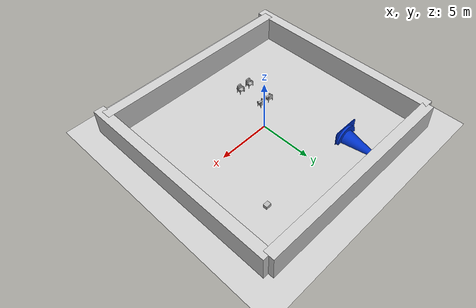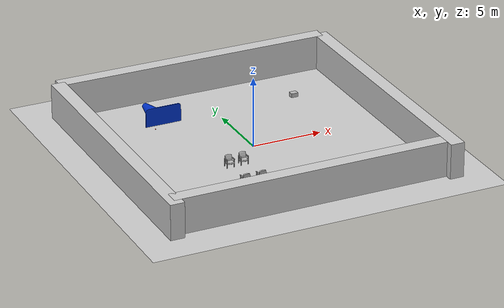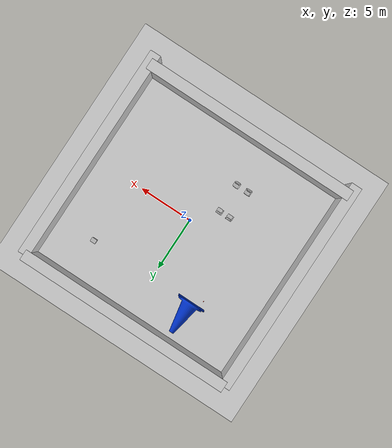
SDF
<sdf version="1.7">
 <world name="test_room">
  <light name="sun" type="directional">
   <pose>0 0 10 0 -0 0</pose>
   <diffuse>0.8 0.8 0.8 1</diffuse>
   <specular>0.2 0.2 0.2 1</specular>
   <attenuation>
    <range>1000</range>
    <constant>0.9</constant>
    <linear>0.01</linear>
    <quadratic>0.001</quadratic>
   </attenuation>
   <direction>-0.5 0.1 -0.9</direction>
   <spot><inner_angle>0</inner_angle><outer_angle>0</outer_angle><falloff>0</falloff></spot>
  </light>
  <model name="ground_plane">
   <static>1</static>
   <link name="link">
    <collision name="collision">
     <geometry><plane><normal>0 0 1</normal><size>100 100</size></plane></geometry>
     <surface>
      <contact><collide_bitmask>65535</collide_bitmask></contact>
      <friction><ode><mu>100</mu><mu2>50</mu2></ode></friction>
     </surface>
    </collision>
    <visual name="visual">
     <cast_shadows>0</cast_shadows>
     <geometry><plane><normal>0 0 1</normal><size>100 100</size></plane></geometry>
     <material>
      <script><uri>file://media/materials/scripts/gazebo.material</uri><name>Gazebo/Grey</name></script>
     </material>
    </visual>
   </link>
  </model>
  <model name="room">
   <static>1</static>
   <link name="wall_back">
    <visual name="back_visual">
     <geometry><box><size>20 1.0 2.5</size></box></geometry>
     <pose>0 -9.0 1.25 0 -0 0</pose>
     <material><ambient>0.8 0.8 0.8 1</ambient></material>
    </visual>
    <collision name="back_collision">
     <pose>0 -9.0 1.25 0 -0 0</pose>
     <geometry><box><size>20 1.0 2.5</size></box></geometry>
    </collision>
   </link>
   <link name="wall_front">
    <visual name="front_visual">
     <geometry><box><size>20 1.0 2.5</size></box></geometry>
     <pose>0 10 1.25 0 -0 0</pose>
     <material><ambient>0.8 0.8 0.8 1</ambient></material>
    </visual>
    <collision name="front_collision">
     <pose>0 10 1.25 0 -0 0</pose>
     <geometry><box><size>20 1.0 2.5</size></box></geometry>
    </collision>
   </link>
   <link name="wall_left">
    <visual name="left_visual">
     <geometry><box><size>1.0 20 2.5</size></box></geometry>
     <pose>-10 0 1.25 0 -0 0</pose>
     <material><ambient>0.8 0.8 0.8 1</ambient></material>
    </visual>
    <collision name="left_collision">
     <pose>-10 0 1.25 0 -0 0</pose>
     <geometry><box><size>1.0 20 2.5</size></box></geometry>
    </collision>
   </link>
   <link name="wall_right">
    <visual name="right_visual">
     <geometry><box><size>1.0 20 2.5</size></box></geometry>
     <pose>10 0 1.25 0 -0 0</pose>
     <material><ambient>0.8 0.8 0.8 1</ambient></material>
    </visual>
    <collision name="right_collision">
     <pose>10 0 1.25 0 -0 0</pose>
     <geometry><box><size>1.0 20 2.5</size></box></geometry>
    </collision>
   </link>
  </model>
  <gravity>0 0 -9.8</gravity>
  <magnetic_field>6e-06 2.3e-05 -4.2e-05</magnetic_field>
  <atmosphere type="adiabatic"/>
  <physics type="ode">
   <max_step_size>0.001</max_step_size>
   <real_time_factor>1</real_time_factor>
   <real_time_update_rate>1000</real_time_update_rate>
  </physics>
  <scene><ambient>0.4 0.4 0.4 1</ambient><background>0.7 0.7 0.7 1</background><shadows>1</shadows></scene>
  <audio><device>default</device></audio>
  <spherical_coordinates>
   <surface_model>EARTH_WGS84</surface_model>
   <latitude_deg>0</latitude_deg>
   <longitude_deg>0</longitude_deg>
   <elevation>0</elevation>
   <heading_deg>0</heading_deg>
  </spherical_coordinates>
  <model name="cardboard_box">
   <pose>5.97718 6.035 0.149 0 -0 0</pose>
   <link name="link">
    <inertial>
     <mass>2</mass>
     <inertia>
      <ixx>0.0416667</ixx>
      <ixy>0</ixy>
      <ixz>0</ixz>
      <iyy>0.0566667</iyy>
      <iyz>0</iyz>
      <izz>0.0683333</izz>
     </inertia>
    </inertial>
    <collision name="collision">
     <geometry><box><size>0.5 0.4 0.3</size></box></geometry>
     <surface>
      <friction><ode><mu>1</mu><mu2>1</mu2></ode></friction>
      <contact><ode><kp>1e+07</kp><kd>1</kd><min_depth>0.001</min_depth><max_vel>0.1</max_vel></ode></contact>
     </surface>
    </collision>
    <visual name="visual">
     <pose>0 0 -0.15 0 -0 0</pose>
     <geometry>
      <mesh><uri>model://cardboard_box/meshes/cardboard_box.dae</uri><scale>1.25932 1.00745 0.755591</scale></mesh>
     </geometry>
    </visual>
   </link>
  </model>
  <model name="Chair">
   <link name="body">
    <pose>0 0 0 0 -0 1.5708</pose>
    <visual name="visual">
     <geometry>
      <mesh><uri>model://Chair/meshes/Chair.obj</uri><scale>0.00817 0.00817 0.00817</scale></mesh>
     </geometry>
    </visual>
    <collision name="collision">
     <geometry>
      <mesh><uri>model://Chair/meshes/Chair.obj</uri><scale>0.00817 0.00817 0.00817</scale></mesh>
     </geometry>
    </collision>
    <inertial>
     <inertia><ixx>1</ixx><ixy>0</ixy><ixz>0</ixz><iyy>1</iyy><iyz>0</iyz><izz>1</izz></inertia>
     <mass>1</mass>
    </inertial>
   </link>
   <pose>-1.70868 -2.1 -3e-06 1e-05 1.7e-05 -1.5854</pose>
  </model>
  <model name="Chair_0">
   <link name="body">
    <pose>0 0 0 0 -0 1.5708</pose>
    <visual name="visual">
     <geometry>
      <mesh><uri>model://Chair/meshes/Chair.obj</uri><scale>0.00817 0.00817 0.00817</scale></mesh>
     </geometry>
    </visual>
    <collision name="collision">
     <geometry>
      <mesh><uri>model://Chair/meshes/Chair.obj</uri><scale>0.00817 0.00817 0.00817</scale></mesh>
     </geometry>
    </collision>
    <inertial>
     <inertia><ixx>1</ixx><ixy>0</ixy><ixz>0</ixz><iyy>1</iyy><iyz>0</iyz><izz>1</izz></inertia>
     <mass>1</mass>
    </inertial>
   </link>
   <pose>-2.72205 -2.1 -2e-06 -1.9e-05 -3e-06 -1.5854</pose>
  </model>
  <model name="Chair_1">
   <link name="body">
    <pose>0 0 0 0 -0 1.5708</pose>
    <visual name="visual">
     <geometry>
      <mesh><uri>model://Chair/meshes/Chair.obj</uri><scale>0.00817 0.00817 0.00817</scale></mesh>
     </geometry>
    </visual>
    <collision name="collision">
     <geometry>
      <mesh><uri>model://Chair/meshes/Chair.obj</uri><scale>0.00817 0.00817 0.00817</scale></mesh>
     </geometry>
    </collision>
    <inertial>
     <inertia><ixx>1</ixx><ixy>0</ixy><ixz>0</ixz><iyy>1</iyy><iyz>0</iyz><izz>1</izz></inertia>
     <mass>1</mass>
    </inertial>
   </link>
   <pose>-1.68179 -4.7 6e-06 -1.5e-05 9e-06 1.56459</pose>
  </model>
  <model name="Chair_2">
   <link name="body">
    <pose>0 0 0 0 -0 1.5708</pose>
    <visual name="visual">
     <geometry>
      <mesh><uri>model://Chair/meshes/Chair.obj</uri><scale>0.00817 0.00817 0.00817</scale></mesh>
     </geometry>
    </visual>
    <collision name="collision">
     <geometry>
      <mesh><uri>model://Chair/meshes/Chair.obj</uri><scale>0.00817 0.00817 0.00817</scale></mesh>
     </geometry>
    </collision>
    <inertial>
     <inertia><ixx>1</ixx><ixy>0</ixy><ixz>0</ixz><iyy>1</iyy><iyz>0</iyz><izz>1</izz></inertia>
     <mass>1</mass>
    </inertial>
   </link>
   <pose>-2.84373 -4.7 -7e-06 9e-06 1e-06 1.55</pose>
  </model>
  <model name="cone_blue">
   <static>1</static>
   <link name="link">
    <visual name="visual">
     <geometry><mesh><uri>model://cone_blue/meshes/cone.stl</uri><scale>0.01 0.01 0.01</scale></mesh></geometry>
     <material><ambient>0 0.2 0.8 1</ambient><diffuse>0 0.2 0.8 1</diffuse></material>
    </visual>
    <collision name="collision">
     <geometry><mesh><uri>model://cone_blue/meshes/cone.stl</uri><scale>0.01 0.01 0.01</scale></mesh></geometry>
    </collision>
    <inertial>
     <mass>0.1</mass>
     <inertia><ixx>0.0001</ixx><iyy>0.0001</iyy><izz>0.0001</izz><ixy>0</ixy><ixz>0</ixz><iyz>0</iyz></inertia>
    </inertial>
   </link>
   <pose>-3.99213 6.08006 0 0 -0 0</pose>
  </model>
  <model name="cone_red">
   <static>1</static>
   <link name="link">
    <visual name="visual">
     <geometry><mesh><uri>model://cone_red/meshes/cone.stl</uri><scale>0.01 0.01 0.01</scale></mesh></geometry>
     <material><ambient>1 0.2 0.1 1</ambient><diffuse>1 0.2 0.1 1</diffuse></material>
    </visual>
    <collision name="collision">
     <geometry><mesh><uri>model://cone_red/meshes/cone.stl</uri><scale>0.01 0.01 0.01</scale></mesh></geometry>
    </collision>
    <inertial>
     <mass>0.1</mass>
     <inertia><ixx>0.0001</ixx><iyy>0.0001</iyy><izz>0.0001</izz><ixy>0</ixy><ixz>0</ixz><iyz>0</iyz></inertia>
    </inertial>
   </link>
   <pose>-4.85367 5.23368 0 0 -0 0</pose>
  </model>
 </world>
</sdf>
